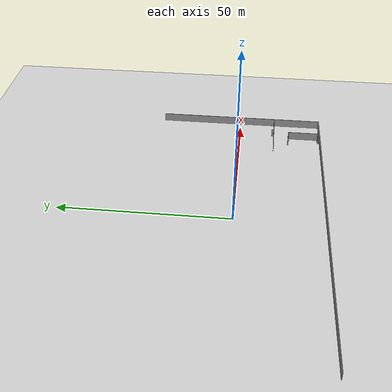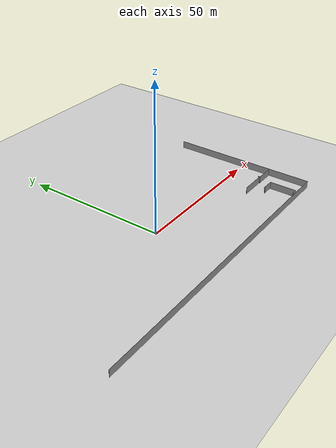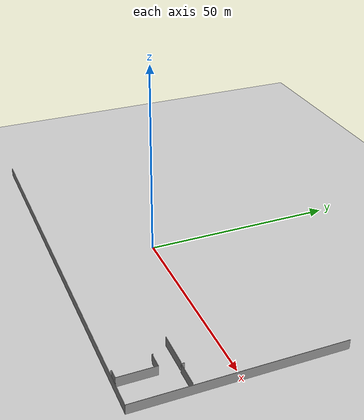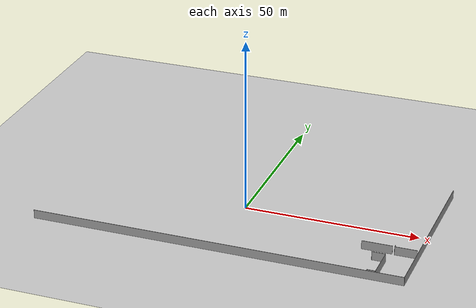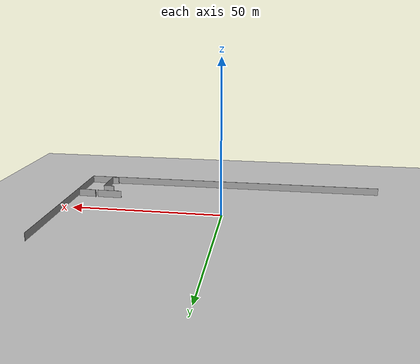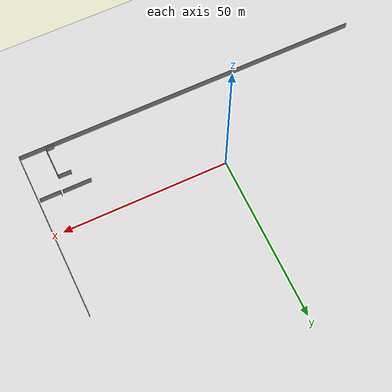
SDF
<sdf version="1.6">
 <world name="default">
  <model name="ground_plane">
   <static>1</static>
   <link name="link">
    <collision name="collision">
     <geometry><plane><normal>0 0 1</normal><size>100 100</size></plane></geometry>
     <surface><friction><ode><mu>100</mu><mu2>50</mu2></ode></friction></surface>
    </collision>
    <visual name="visual">
     <cast_shadows>0</cast_shadows>
     <geometry><plane><normal>0 0 1</normal><size>100 100</size></plane></geometry>
     <material>
      <script><uri>file://media/materials/scripts/gazebo.material</uri><name>Gazebo/Grey</name></script>
     </material>
    </visual>
   </link>
  </model>
  <model name="50045368">
   <static>1</static>
   <link name="Wall_333">
    <collision name="Wall_333_Collision">
     <geometry><box><size>6.20508259212 0.1 2.5</size></box></geometry>
     <pose>3.10254129606 0 1.25 0 0 0</pose>
    </collision>
    <visual name="Wall_333_Visual">
     <pose>3.10254129606 0 1.25 0 0 0</pose>
     <geometry><box><size>6.20508259212 0.1 2.5</size></box></geometry>
     <material>
      <script><uri>file://media/materials/scripts/gazebo.material</uri><name>Gazebo/Grey</name></script>
      <ambient>1 1 1 1</ambient>
     </material>
    </visual>
    <pose>105.087166455 -36.6880559085 0 0 0 3.14159265359</pose>
   </link>
   <link name="Wall_334">
    <collision name="Wall_334_Collision">
     <geometry><box><size>0.754129606099 0.1 2.5</size></box></geometry>
     <pose>0.37706480305 0 1.25 0 0 0</pose>
    </collision>
    <visual name="Wall_334_Visual">
     <pose>0.37706480305 0 1.25 0 0 0</pose>
     <geometry><box><size>0.754129606099 0.1 2.5</size></box></geometry>
     <material>
      <script><uri>file://media/materials/scripts/gazebo.material</uri><name>Gazebo/Grey</name></script>
      <ambient>1 1 1 1</ambient>
     </material>
    </visual>
    <pose>98.8820838628 -36.6880559085 0 0 0 1.57079632679</pose>
   </link>
   <link name="Wall_566">
    <collision name="Wall_566_Collision">
     <geometry><box><size>0.279542566709 0.1 2.5</size></box></geometry>
     <pose>0.139771283355 0 1.25 0 0 0</pose>
    </collision>
    <visual name="Wall_566_Visual">
     <pose>0.139771283355 0 1.25 0 0 0</pose>
     <geometry><box><size>0.279542566709 0.1 2.5</size></box></geometry>
     <material>
      <script><uri>file://media/materials/scripts/gazebo.material</uri><name>Gazebo/Grey</name></script>
      <ambient>1 1 1 1</ambient>
     </material>
    </visual>
    <pose>93.9301143583 -41.0100381194 0 0 0 -1.57079632679</pose>
   </link>
   <link name="Wall_567">
    <collision name="Wall_567_Collision">
     <geometry><box><size>3.77941550191 0.1 2.5</size></box></geometry>
     <pose>1.88970775095 0 1.25 0 0 0</pose>
    </collision>
    <visual name="Wall_567_Visual">
     <pose>1.88970775095 0 1.25 0 0 0</pose>
     <geometry><box><size>3.77941550191 0.1 2.5</size></box></geometry>
     <material>
      <script><uri>file://media/materials/scripts/gazebo.material</uri><name>Gazebo/Grey</name></script>
      <ambient>1 1 1 1</ambient>
     </material>
    </visual>
    <pose>93.9301143583 -41.2895806861 0 0 0 0.0</pose>
   </link>
   <link name="Wall_568">
    <collision name="Wall_568_Collision">
     <geometry><box><size>9.40482846252 0.1 2.5</size></box></geometry>
     <pose>4.70241423126 0 1.25 0 0 0</pose>
    </collision>
    <visual name="Wall_568_Visual">
     <pose>4.70241423126 0 1.25 0 0 0</pose>
     <geometry><box><size>9.40482846252 0.1 2.5</size></box></geometry>
     <material>
      <script><uri>file://media/materials/scripts/gazebo.material</uri><name>Gazebo/Grey</name></script>
      <ambient>1 1 1 1</ambient>
     </material>
    </visual>
    <pose>97.7095298602 -41.2895806861 0 0 0 -1.57079632679</pose>
   </link>
   <link name="Wall_569">
    <collision name="Wall_569_Collision">
     <geometry><box><size>2.28437102922 0.1 2.5</size></box></geometry>
     <pose>1.14218551461 0 1.25 0 0 0</pose>
    </collision>
    <visual name="Wall_569_Visual">
     <pose>1.14218551461 0 1.25 0 0 0</pose>
     <geometry><box><size>2.28437102922 0.1 2.5</size></box></geometry>
     <material>
      <script><uri>file://media/materials/scripts/gazebo.material</uri><name>Gazebo/Grey</name></script>
      <ambient>1 1 1 1</ambient>
     </material>
    </visual>
    <pose>97.7095298602 -50.6944091487 0 0 0 3.14159265359</pose>
   </link>
   <link name="Wall_570">
    <collision name="Wall_570_Collision">
     <geometry><box><size>0.334815756036 0.1 2.5</size></box></geometry>
     <pose>0.167407878018 0 1.25 0 0 0</pose>
    </collision>
    <visual name="Wall_570_Visual">
     <pose>0.167407878018 0 1.25 0 0 0</pose>
     <geometry><box><size>0.334815756036 0.1 2.5</size></box></geometry>
     <material>
      <script><uri>file://media/materials/scripts/gazebo.material</uri><name>Gazebo/Grey</name></script>
      <ambient>1 1 1 1</ambient>
     </material>
    </visual>
    <pose>95.425158831 -50.6944091487 0 0 0 -1.57079632679</pose>
   </link>
   <link name="Wall_609">
    <collision name="Wall_609_Collision">
     <geometry><box><size>8.59415501906 0.1 2.5</size></box></geometry>
     <pose>4.29707750953 0 1.25 0 0 0</pose>
    </collision>
    <visual name="Wall_609_Visual">
     <pose>4.29707750953 0 1.25 0 0 0</pose>
     <geometry><box><size>8.59415501906 0.1 2.5</size></box></geometry>
     <material>
      <script><uri>file://media/materials/scripts/gazebo.material</uri><name>Gazebo/Grey</name></script>
      <ambient>1 1 1 1</ambient>
     </material>
    </visual>
    <pose>98.2786531131 -36.5415501906 0 0 0 3.14159265359</pose>
   </link>
   <link name="Wall_620">
    <collision name="Wall_620_Collision">
     <geometry><box><size>51.2883100381 0.1 2.5</size></box></geometry>
     <pose>25.6441550191 0 1.25 0 0 0</pose>
    </collision>
    <visual name="Wall_620_Visual">
     <pose>25.6441550191 0 1.25 0 0 0</pose>
     <geometry><box><size>51.2883100381 0.1 2.5</size></box></geometry>
     <material>
      <script><uri>file://media/materials/scripts/gazebo.material</uri><name>Gazebo/Grey</name></script>
      <ambient>1 1 1 1</ambient>
     </material>
    </visual>
    <pose>105.614485388 -51.2883100381 0 0 0 1.57079632679</pose>
   </link>
   <link name="Wall_621">
    <collision name="Wall_621_Collision">
     <geometry><box><size>105.614485388 0.1 2.5</size></box></geometry>
     <pose>52.8072426938 0 1.25 0 0 0</pose>
    </collision>
    <visual name="Wall_621_Visual">
     <pose>52.8072426938 0 1.25 0 0 0</pose>
     <geometry><box><size>105.614485388 0.1 2.5</size></box></geometry>
     <material>
      <script><uri>file://media/materials/scripts/gazebo.material</uri><name>Gazebo/Grey</name></script>
      <ambient>1 1 1 1</ambient>
     </material>
    </visual>
    <pose>105.614485388 -51.2883100381 0 0 0 3.14159265359</pose>
   </link>
   <pose>-52.8 25.6383100381 0 0 0 0</pose>
  </model>
 </world>
</sdf>
